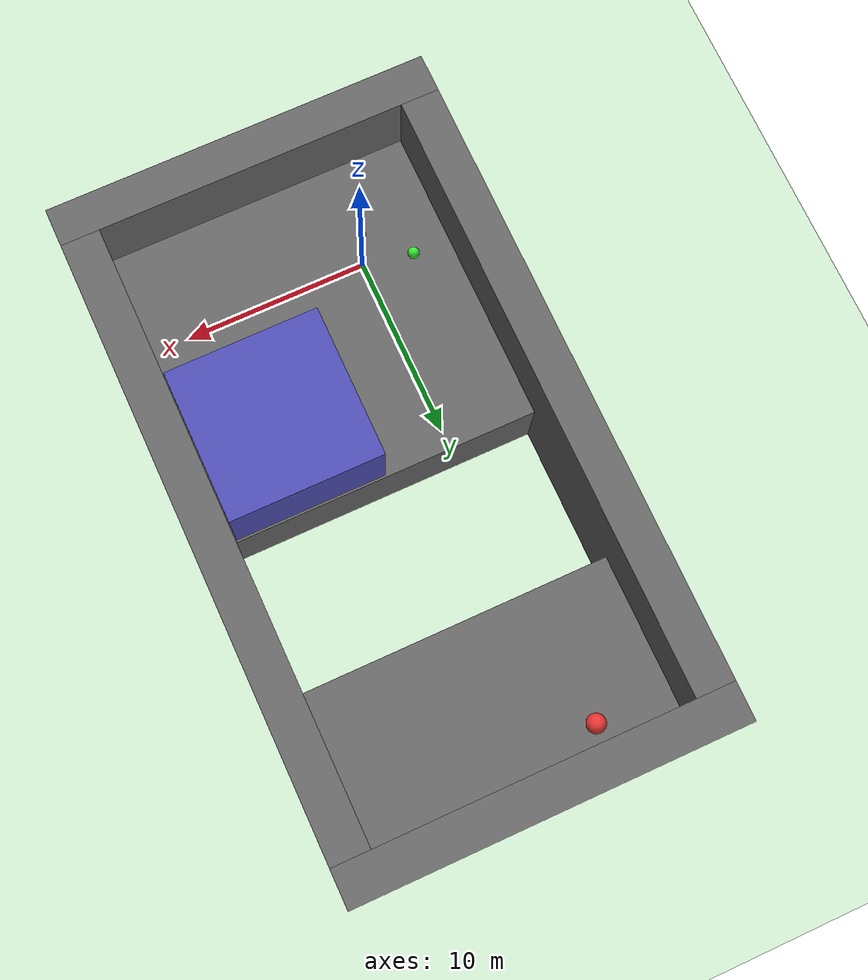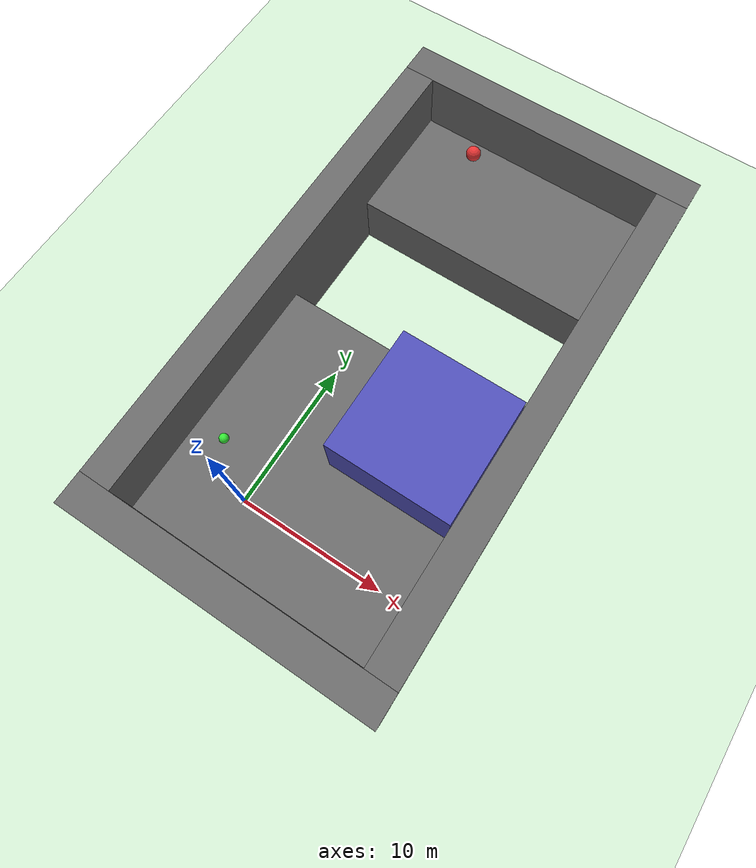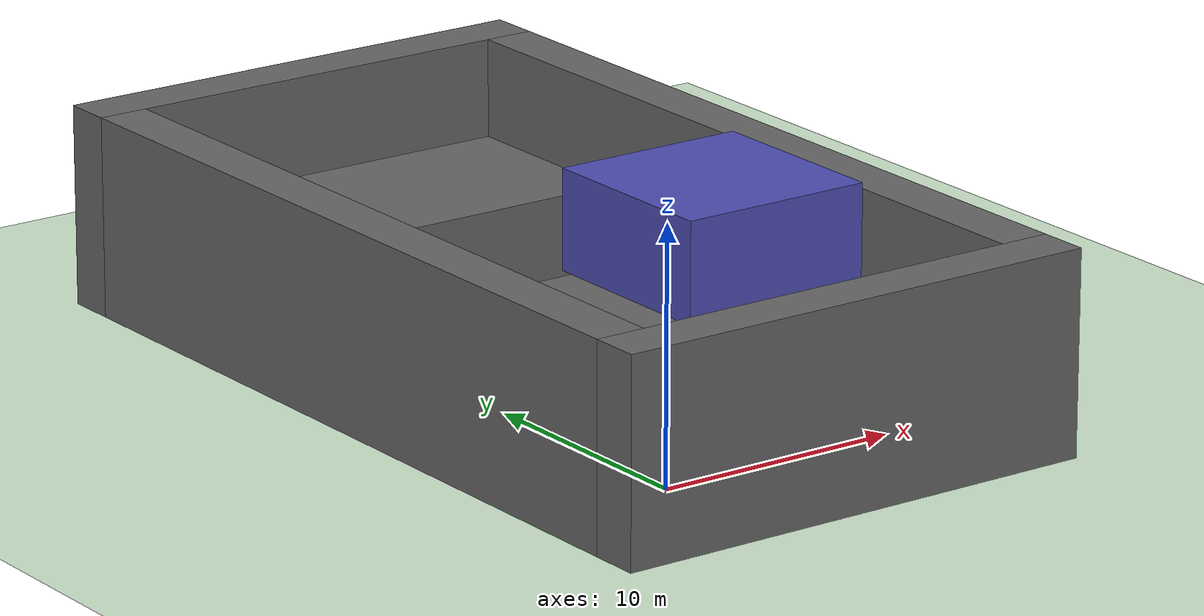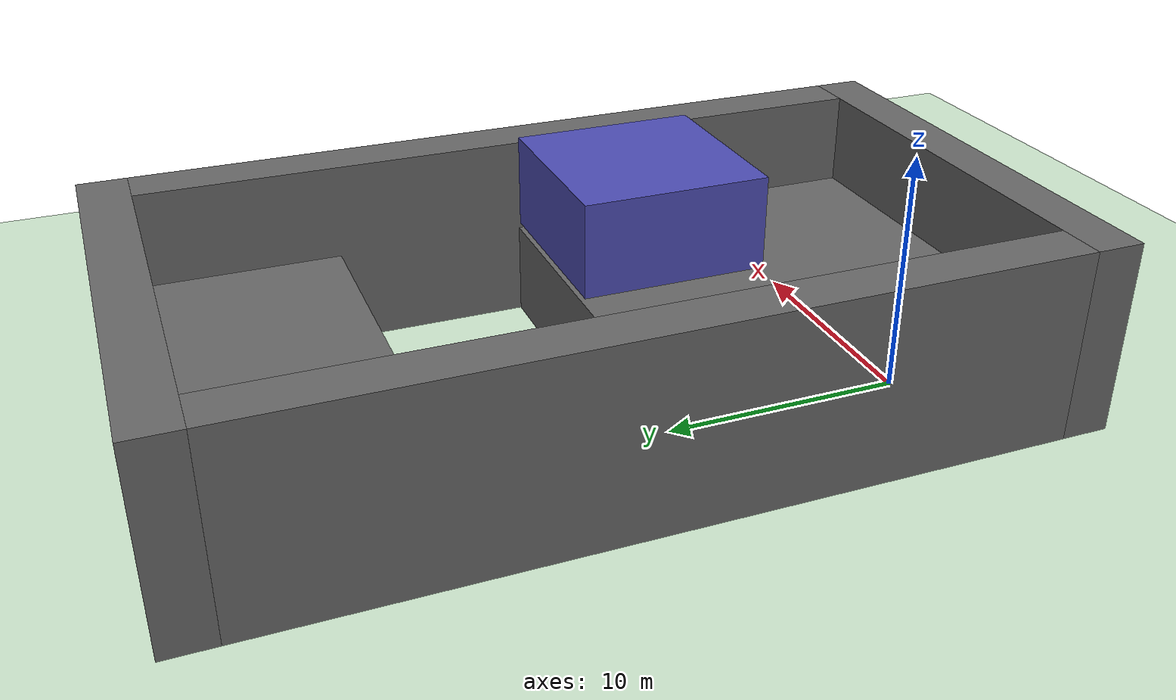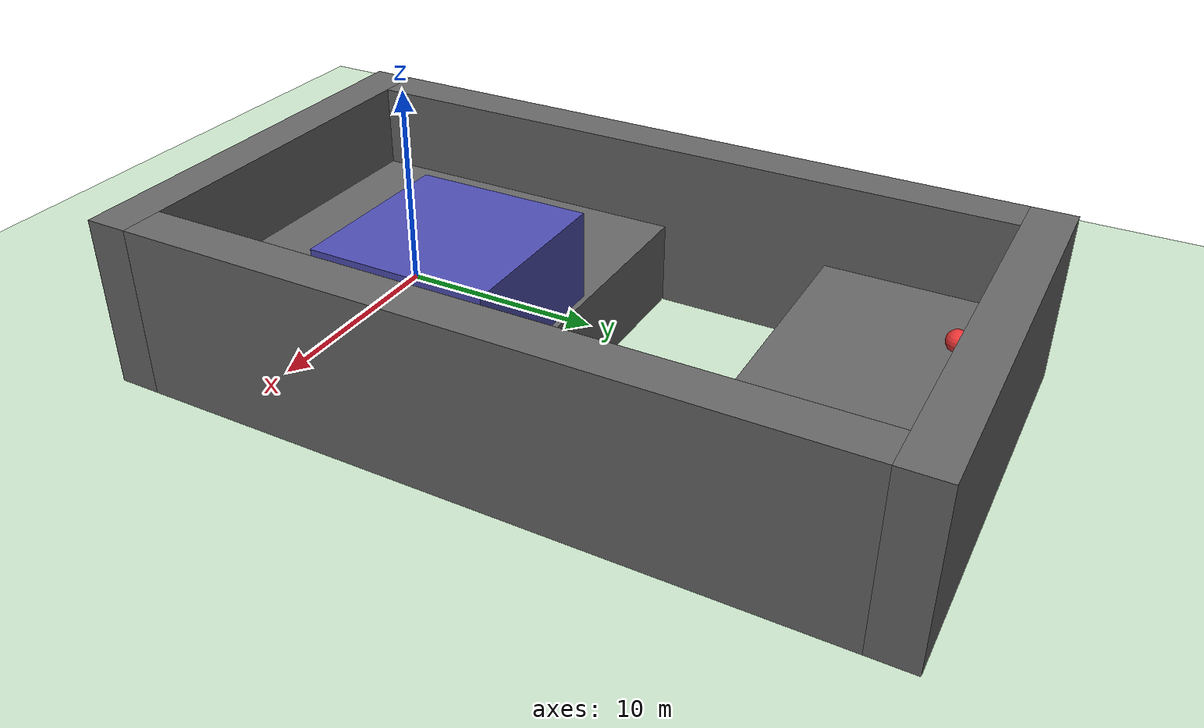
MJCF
<mujoco>
  <compiler inertiafromgeom="true" angle="degree" coordinate="local" />
  <option timestep="0.02" integrator="RK4" />
  <default>
    <joint limited="false" armature="0" damping="1" />
    <geom condim="3" conaffinity="0" margin="0" friction="1 0.5 0.5" rgba="0.8 0.6 0.4 1" density="100" />
  </default>
  <asset>
    <texture type="skybox" builtin="gradient" width="100" height="100" rgb1="1 1 1" rgb2="0 0 0" />
    <texture name="texgeom" type="cube" builtin="flat" mark="cross" width="127" height="1278" rgb1="0.8 0.6 0.4" rgb2="0.8 0.6 0.4" markrgb="1 1 1" random="0.01" />
    <texture name="texplane" type="2d" builtin="checker" rgb1="0 0 0" rgb2="0.8 0.8 0.8" width="100" height="100" />
    <material name='MatPlane' texture="texplane" shininess="1" texrepeat="30 30" specular="1"  reflectance="0.5" />
    <material name='geom' texture="texgeom" texuniform="true" />
  </asset>
  <worldbody>
    <light directional="true" cutoff="100" exponent="1" diffuse="1 1 1" specular=".1 .1 .1" pos="0 0 1.3" dir="-0 0 -1.3" />
    <geom name='floor' material="MatPlane" pos='0 0 0' size='40 40 40' type='plane' conaffinity='1' rgba='0.8 0.9 0.8 1' condim='3' />

    <geom pos="4 4 2" size="8 8 2" contype="1" conaffinity="1" name="path_1" type="box" material="" rgba="0.4 0.4 0.4 1"/>
    <geom pos="4 24 2" size="8 4 2" contype="1" conaffinity="1" name="path_2" type="box" material="" rgba="0.4 0.4 0.4 1"/>
    <geom pos="-5 12 4" size="1 16 4" contype="1" conaffinity="1" name="wall_1" type="box" material="" rgba="0.4 0.4 0.4 1"/>
    <geom pos="13 12 4" size="1 16 4" contype="1" conaffinity="1" name="wall_2" type="box" material="" rgba="0.4 0.4 0.4 1"/>
    <geom pos="4 -5 4" size="10 1 4" contype="1" conaffinity="1" name="wall_3" type="box" material="" rgba="0.4 0.4 0.4 1"/>
    <geom pos="4 29 4" size="10 1 4" contype="1" conaffinity="1" name="wall_4" type="box" material="" rgba="0.4 0.4 0.4 1"/>

    <body name="torso" pos="0 0 4">
      <geom name="pointbody" type="sphere" size="0.25" pos="0 0 0.25"/>
      <joint name='ballx' type='slide' axis='1 0 0' pos='0 0 0'/>
      <joint name='bally' type='slide' axis='0 1 0' pos='0 0 0'/>
      <joint name='ballz' type='slide' axis='0 0 1' pos='0 0 0'/>
    </body>

    <body name="target" pos="0 27 4.3">
      <geom conaffinity="0" contype="0" name="target" pos="0 0 0" rgba="0.9 0.2 0.2 1" size=".5" type="sphere"/>
    </body>

    <body name="highlevel" pos="-2 2 4.3">
      <geom conaffinity="0" contype="0" name="highlevel" pos="0 0 0" rgba="0.2 0.9 0.2 1" size=".3" type="sphere"/>
    </body>

    <body name="block" pos="8 8 6.25">
      <geom pos="0 0 0" mass="1" size="3.95 3.95 2" contype="1" conaffinity="1" name="block" type="box" material="" rgba="0.3 0.3 0.7 1"/>
      <joint name='blocky' type='slide' axis='0 1 0' pos='0 0 0' limited="true" range="0 8.0" armature="0" damping="0"/>
      <joint name='blockz' type='slide' axis='0 0 1' pos='0 0 0' limited="false" armature="0" damping="0"/>
    </body>

  </worldbody>

  <actuator>
    <!-- Those are just dummy actuators for providing ranges, previously the gear was set to 100 -->
    <motor joint='ballx' ctrlrange="-1 1" ctrllimited="true" gear="100"/>
    <motor joint='bally' ctrlrange="-1 1" ctrllimited="true" gear="100"/>
  </actuator>
</mujoco>
